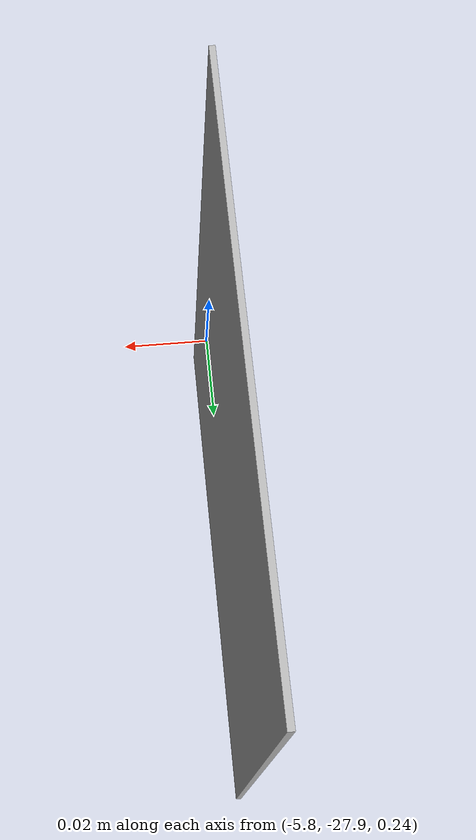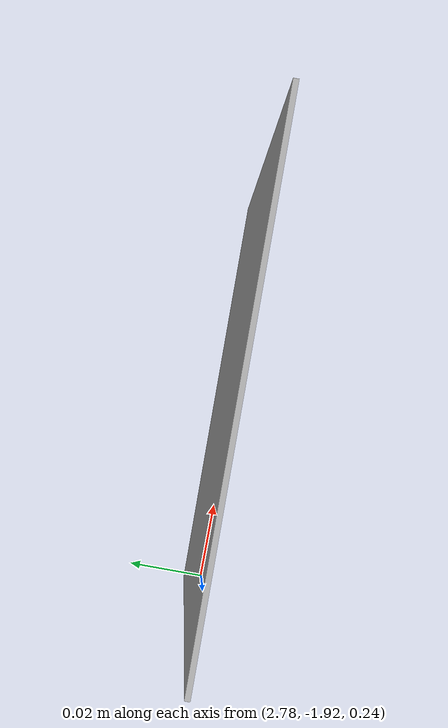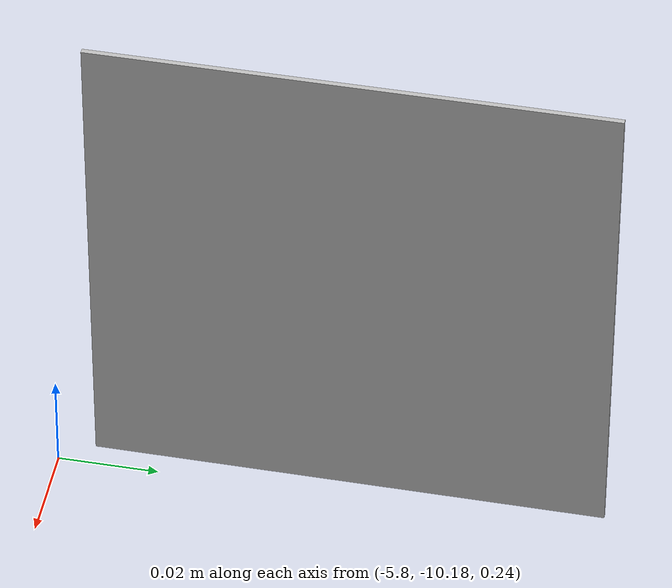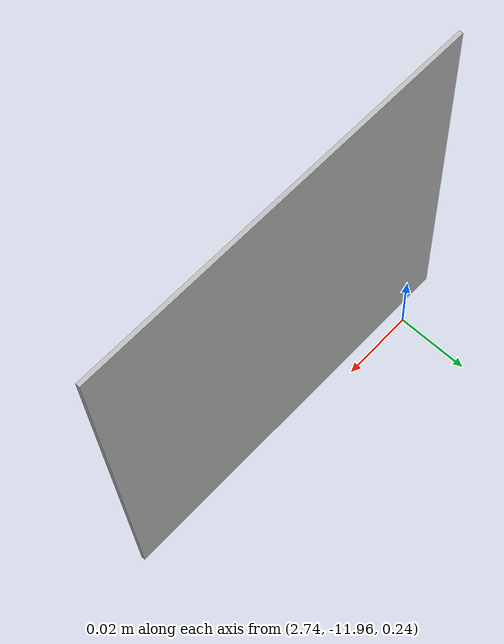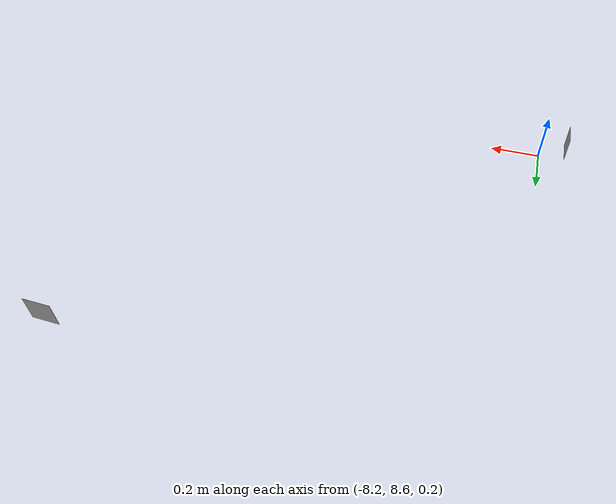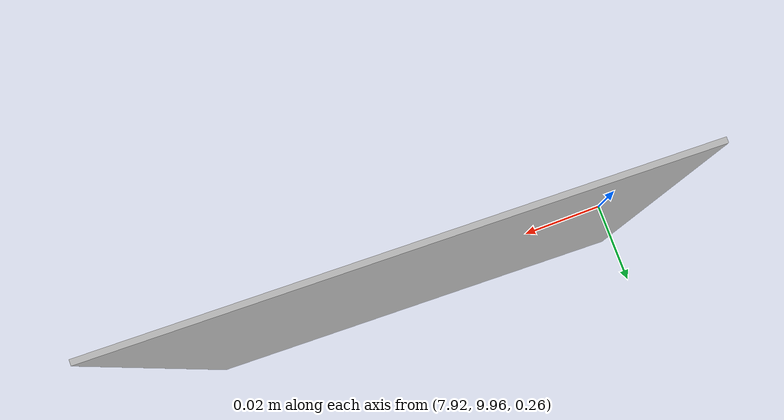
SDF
<sdf version="1.7">
 <world name="default">
  <light name="sun" type="directional">
   <pose>0 0 10 0 -0 0</pose>
   <diffuse>1 1 1 1</diffuse>
   <specular>0.5 0.5 0.5 1</specular>
   <attenuation>
    <range>2000</range>
    <constant>0.7</constant>
    <linear>0.005</linear>
    <quadratic>0.0005</quadratic>
   </attenuation>
   <direction>-0.5 0.1 -0.9</direction>
   <spot><inner_angle>0</inner_angle><outer_angle>0</outer_angle><falloff>0</falloff></spot>
  </light>
  <gravity>0 0 -9.8</gravity>
  <magnetic_field>6e-06 2.3e-05 -4.2e-05</magnetic_field>
  <atmosphere type="adiabatic"/>
  <physics type="ode">
   <max_step_size>0.001</max_step_size>
   <real_time_factor>1</real_time_factor>
   <real_time_update_rate>1000</real_time_update_rate>
  </physics>
  <scene><ambient>1 1 1 1</ambient><background>1 1 1 1</background><shadows>1</shadows></scene>
  <audio><device>default</device></audio>
  <spherical_coordinates>
   <surface_model>EARTH_WGS84</surface_model>
   <latitude_deg>0</latitude_deg>
   <longitude_deg>0</longitude_deg>
   <elevation>0</elevation>
   <heading_deg>0</heading_deg>
  </spherical_coordinates>
  <model name="qr_SalledeStockage1">
   <static>1</static>
   <link name="qr_SalledeStockage1_link">
    <pose>0 0 0.0125 3.14159 1.57079 3.14159</pose>
    <visual name="visual_qr_SalledeStockage1">
     <cast_shadows>0</cast_shadows>
     <geometry><box><size>0.1 0.1 0.001</size></box></geometry>
     <material>
      <script>
       <uri>model://qr_SalledeStockage1/materials/scripts</uri>
       <uri>model://qr_SalledeStockage1/materials/textures</uri>
       <name>qr_SalledeStockage1/qr_SalledeStockage1</name>
      </script>
     </material>
    </visual>
    <collision name="collision_qr_SalledeStockage1">
     <geometry><box><size>0.1 0.1 0.001</size></box></geometry>
    </collision>
   </link>
   <pose>7.973 9.9669 0.3 0 -0 1.54064</pose>
  </model>
  <model name="qr_chambre1">
   <static>1</static>
   <link name="qr_chambre1_link">
    <pose>0 0 0.3 3.14159 1.57079 3.14159</pose>
    <visual name="visual_qr_chambre1">
     <cast_shadows>0</cast_shadows>
     <geometry><box><size>0.1 0.1 0.001</size></box></geometry>
     <material>
      <script>
       <uri>model://qr_chambre1/materials/scripts</uri>
       <uri>model://qr_chambre1/materials/textures</uri>
       <name>qr_chambre1/qr_chambre1</name>
      </script>
     </material>
    </visual>
    <collision name="collision_qr_chambre1"><geometry><box><size>0.1 0.1 0.001</size></box></geometry></collision>
   </link>
   <pose>9.58568 8.60878 -0 0 -0 0</pose>
  </model>
  <model name="qr_chambre2">
   <static>1</static>
   <link name="qr_chambre2_link">
    <pose>0 0 0.3 3.14159 1.57079 3.14159</pose>
    <visual name="visual_qr_chambre2">
     <cast_shadows>0</cast_shadows>
     <geometry><box><size>0.1 0.1 0.001</size></box></geometry>
     <material>
      <script>
       <uri>model://qr_chambre2/materials/scripts</uri>
       <uri>model://qr_chambre2/materials/textures</uri>
       <name>qr_chambre2/qr_chambre2</name>
      </script>
     </material>
    </visual>
    <collision name="collision_qr_chambre2"><geometry><box><size>0.1 0.1 0.001</size></box></geometry></collision>
   </link>
   <pose>9.58624 3.42782 -0 0 -0 0</pose>
  </model>
  <model name="qr_chambre3">
   <static>1</static>
   <link name="qr_chambre3_link">
    <pose>0 0 0.3 3.14159 1.57079 3.14159</pose>
    <visual name="visual_qr_chambre3">
     <cast_shadows>0</cast_shadows>
     <geometry><box><size>0.1 0.1 0.001</size></box></geometry>
     <material>
      <script>
       <uri>model://qr_chambre3/materials/scripts</uri>
       <uri>model://qr_chambre3/materials/textures</uri>
       <name>qr_chambre3/qr_chambre3</name>
      </script>
     </material>
    </visual>
    <collision name="collision_qr_chambre3"><geometry><box><size>0.1 0.1 0.001</size></box></geometry></collision>
   </link>
   <pose>7.0842 -10.1306 -0 0 -0 0</pose>
  </model>
  <model name="qr_chambre4">
   <static>1</static>
   <link name="qr_chambre4_link">
    <pose>0 0 0.3 3.14159 1.57079 3.14159</pose>
    <visual name="visual_qr_chambre4">
     <cast_shadows>0</cast_shadows>
     <geometry><box><size>0.1 0.1 0.001</size></box></geometry>
     <material>
      <script>
       <uri>model://qr_chambre4/materials/scripts</uri>
       <uri>model://qr_chambre4/materials/textures</uri>
       <name>qr_chambre4/qr_chambre4</name>
      </script>
     </material>
    </visual>
    <collision name="collision_qr_chambre4"><geometry><box><size>0.1 0.1 0.001</size></box></geometry></collision>
   </link>
   <pose>7.0861 -24.1264 -0 0 -0 0</pose>
  </model>
  <model name="qr_chambre5">
   <static>1</static>
   <link name="qr_chambre5_link">
    <pose>0 0 0.3 3.14159 1.57079 3.14159</pose>
    <visual name="visual_qr_chambre5">
     <cast_shadows>0</cast_shadows>
     <geometry><box><size>0.1 0.1 0.001</size></box></geometry>
     <material>
      <script>
       <uri>model://qr_chambre5/materials/scripts</uri>
       <uri>model://qr_chambre5/materials/textures</uri>
       <name>qr_chambre5/qr_chambre5</name>
      </script>
     </material>
    </visual>
    <collision name="collision_qr_chambre5"><geometry><box><size>0.1 0.1 0.001</size></box></geometry></collision>
   </link>
   <pose>5.13579 -27.9018 0 0 0 -1.57146</pose>
  </model>
  <model name="qr_chambre5_0">
   <static>1</static>
   <link name="qr_chambre5_link">
    <pose>0 0 0.3 3.14159 1.57079 3.14159</pose>
    <visual name="visual_qr_chambre5">
     <cast_shadows>0</cast_shadows>
     <geometry><box><size>0.1 0.1 0.001</size></box></geometry>
     <material>
      <script>
       <uri>model://qr_chambre5/materials/scripts</uri>
       <uri>model://qr_chambre5/materials/textures</uri>
       <name>qr_chambre5/qr_chambre5</name>
      </script>
     </material>
    </visual>
    <collision name="collision_qr_chambre5"><geometry><box><size>0.1 0.1 0.001</size></box></geometry></collision>
   </link>
   <pose>-1.00847 -34.0332 -0 0 -0 1.56542</pose>
  </model>
  <model name="qr_SalledAttente">
   <static>1</static>
   <link name="qr_SalledAttente_link">
    <pose>0 0 0.3 3.14159 1.57079 3.14159</pose>
    <visual name="visual_qr_SalledAttente">
     <cast_shadows>0</cast_shadows>
     <geometry><box><size>0.1 0.1 0.001</size></box></geometry>
     <material>
      <script>
       <uri>model://qr_SalledAttente/materials/scripts</uri>
       <uri>model://qr_SalledAttente/materials/textures</uri>
       <name>qr_SalledAttente/qr_SalledAttente</name>
      </script>
     </material>
    </visual>
    <collision name="collision_qr_SalledAttente">
     <geometry><box><size>0.1 0.1 0.001</size></box></geometry>
    </collision>
   </link>
   <pose>-5.79635 -27.8407 -0 0 -0 0</pose>
  </model>
  <model name="qr_chambre6">
   <static>1</static>
   <link name="qr_chambre6_link">
    <pose>0 0 0.3 3.14159 1.57079 3.14159</pose>
    <visual name="visual_qr_chambre6">
     <cast_shadows>0</cast_shadows>
     <geometry><box><size>0.1 0.1 0.001</size></box></geometry>
     <material>
      <script>
       <uri>model://qr_chambre6/materials/scripts</uri>
       <uri>model://qr_chambre6/materials/textures</uri>
       <name>qr_chambre6/qr_chambre6</name>
      </script>
     </material>
    </visual>
    <collision name="collision_qr_chambre6"><geometry><box><size>0.1 0.1 0.001</size></box></geometry></collision>
   </link>
   <pose>-5.79396 -24.1246 -0 0 -0 0</pose>
  </model>
  <model name="qr_chambre7">
   <static>1</static>
   <link name="qr_chambre7_link">
    <pose>0 0 0.3 3.14159 1.57079 3.14159</pose>
    <visual name="visual_qr_chambre7">
     <cast_shadows>0</cast_shadows>
     <geometry><box><size>0.1 0.1 0.001</size></box></geometry>
     <material>
      <script>
       <uri>model://qr_chambre7/materials/scripts</uri>
       <uri>model://qr_chambre7/materials/textures</uri>
       <name>qr_chambre7/qr_chambre7</name>
      </script>
     </material>
    </visual>
    <collision name="collision_qr_chambre7"><geometry><box><size>0.1 0.1 0.001</size></box></geometry></collision>
   </link>
   <pose>-5.79523 -10.121 -0 0 -0 0</pose>
  </model>
  <model name="qr_chambre8">
   <static>1</static>
   <link name="qr_chambre8_link">
    <pose>0 0 0.3 3.14159 1.57079 3.14159</pose>
    <visual name="visual_qr_chambre8">
     <cast_shadows>0</cast_shadows>
     <geometry><box><size>0.1 0.1 0.001</size></box></geometry>
     <material>
      <script>
       <uri>model://qr_chambre8/materials/scripts</uri>
       <uri>model://qr_chambre8/materials/textures</uri>
       <name>qr_chambre8/qr_chambre8</name>
      </script>
     </material>
    </visual>
    <collision name="collision_qr_chambre8"><geometry><box><size>0.1 0.1 0.001</size></box></geometry></collision>
   </link>
   <pose>-8.2967 3.44099 -0 0 -0 0</pose>
  </model>
  <model name="qr_chambre9">
   <static>1</static>
   <link name="qr_chambre9_link">
    <pose>0 0 0.3 3.14159 1.57079 3.14159</pose>
    <visual name="visual_qr_chambre9">
     <cast_shadows>0</cast_shadows>
     <geometry><box><size>0.1 0.1 0.001</size></box></geometry>
     <material>
      <script>
       <uri>model://qr_chambre9/materials/scripts</uri>
       <uri>model://qr_chambre9/materials/textures</uri>
       <name>qr_chambre9/qr_chambre9</name>
      </script>
     </material>
    </visual>
    <collision name="collision_qr_chambre9"><geometry><box><size>0.1 0.1 0.001</size></box></geometry></collision>
   </link>
   <pose>-8.29797 8.60516 -0 0 -0 0</pose>
  </model>
  <model name="qr_SalledeStockage2">
   <static>1</static>
   <link name="qr_SalledeStockage2_link">
    <pose>0 0 0.0125 3.14159 1.57079 3.14159</pose>
    <visual name="visual_qr_SalledeStockage2">
     <cast_shadows>0</cast_shadows>
     <geometry><box><size>0.1 0.1 0.001</size></box></geometry>
     <material>
      <script>
       <uri>model://qr_SalledeStockage2/materials/scripts</uri>
       <uri>model://qr_SalledeStockage2/materials/textures</uri>
       <name>qr_SalledeStockage2/qr_SalledeStockage2</name>
      </script>
     </material>
    </visual>
    <collision name="collision_qr_SalledeStockage2">
     <geometry><box><size>0.1 0.1 0.001</size></box></geometry>
    </collision>
   </link>
   <pose>-6.69278 9.96674 0.3 0 -0 1.55497</pose>
  </model>
  <model name="qr_SalleConsultation1">
   <static>1</static>
   <link name="qr_SalleConsultation1_link">
    <pose>0 0 0.3 3.14159 1.57079 3.14159</pose>
    <visual name="visual_qr_SalleConsultation1">
     <cast_shadows>0</cast_shadows>
     <geometry><box><size>0.1 0.1 0.001</size></box></geometry>
     <material>
      <script>
       <uri>model://qr_SalleConsultation1/materials/scripts</uri>
       <uri>model://qr_SalleConsultation1/materials/textures</uri>
       <name>qr_SalleConsultation1/qr_SalleConsultation1</name>
      </script>
     </material>
    </visual>
    <collision name="collision_qr_SalleConsultation1">
     <geometry><box><size>0.1 0.1 0.001</size></box></geometry>
    </collision>
   </link>
   <pose>2.83115 -1.91517 0 0 0 -1.56656</pose>
  </model>
  <model name="qr_SalleConsultation2">
   <static>1</static>
   <link name="qr_SalleConsultation2_link">
    <pose>0 0 0.3 3.14159 1.57079 3.14159</pose>
    <visual name="visual_qr_SalleConsultation2">
     <cast_shadows>0</cast_shadows>
     <geometry><box><size>0.1 0.1 0.001</size></box></geometry>
     <material>
      <script>
       <uri>model://qr_SalleConsultation2/materials/scripts</uri>
       <uri>model://qr_SalleConsultation2/materials/textures</uri>
       <name>qr_SalleConsultation2/qr_SalleConsultation2</name>
      </script>
     </material>
    </visual>
    <collision name="collision_qr_SalleConsultation2">
     <geometry><box><size>0.1 0.1 0.001</size></box></geometry>
    </collision>
   </link>
   <pose>-1.54088 -1.90841 0 0 0 -1.58031</pose>
  </model>
  <model name="qr_Toilette1">
   <static>1</static>
   <link name="qr_Toilette1_link">
    <pose>0 0 0.3 3.14159 1.57079 3.14159</pose>
    <visual name="visual_qr_Toilette1">
     <cast_shadows>0</cast_shadows>
     <geometry><box><size>0.1 0.1 0.001</size></box></geometry>
     <material>
      <script>
       <uri>model://qr_Toilette1/materials/scripts</uri>
       <uri>model://qr_Toilette1/materials/textures</uri>
       <name>qr_Toilette1/qr_Toilette1</name>
      </script>
     </material>
    </visual>
    <collision name="collision_qr_Toilette1">
     <geometry><box><size>0.1 0.1 0.001</size></box></geometry>
    </collision>
   </link>
   <pose>2.7813 -11.9612 0 0 0 -1.57826</pose>
  </model>
  <model name="qr_Toilette2">
   <static>1</static>
   <link name="qr_Toilette2_link">
    <pose>0 0 0.3 3.14159 1.57079 3.14159</pose>
    <visual name="visual_qr_Toilette2">
     <cast_shadows>0</cast_shadows>
     <geometry><box><size>0.1 0.1 0.001</size></box></geometry>
     <material>
      <script>
       <uri>model://qr_Toilette2/materials/scripts</uri>
       <uri>model://qr_Toilette2/materials/textures</uri>
       <name>qr_Toilette2/qr_Toilette2</name>
      </script>
     </material>
    </visual>
    <collision name="collision_qr_Toilette2">
     <geometry><box><size>0.1 0.1 0.001</size></box></geometry>
    </collision>
   </link>
   <pose>-1.55473 -11.9621 0 0 0 -1.56522</pose>
  </model>
  <model name="qr_SalledeRadiologie">
   <static>1</static>
   <link name="qr_SalledeRadiologie_link">
    <pose>0 0 0.3 3.14159 1.57079 3.14159</pose>
    <visual name="visual_qr_SalledeRadiologie">
     <cast_shadows>0</cast_shadows>
     <geometry><box><size>0.1 0.1 0.001</size></box></geometry>
     <material>
      <script>
       <uri>model://qr_SalledeRadiologie/materials/scripts</uri>
       <uri>model://qr_SalledeRadiologie/materials/textures</uri>
       <name>qr_SalledeRadiologie/qr_SalledeRadiologie</name>
      </script>
     </material>
    </visual>
    <collision name="collision_qr_SalledeRadiologie">
     <geometry><box><size>0.1 0.1 0.001</size></box></geometry>
    </collision>
   </link>
   <pose>2.77812 -17.9105 -0 0 0 -1.60389</pose>
  </model>
  <model name="qr_ChambreSoins">
   <static>1</static>
   <link name="qr_ChambreSoins_link">
    <pose>0 0 0.0125 3.14159 1.57079 3.14159</pose>
    <visual name="visual_qr_ChambreSoins">
     <cast_shadows>0</cast_shadows>
     <geometry><box><size>0.1 0.1 0.001</size></box></geometry>
     <material>
      <script>
       <uri>model://qr_ChambreSoins/materials/scripts</uri>
       <uri>model://qr_ChambreSoins/materials/textures</uri>
       <name>qr_ChambreSoins/qr_ChambreSoins</name>
      </script>
     </material>
    </visual>
    <collision name="collision_qr_ChambreSoins">
     <geometry><box><size>0.1 0.1 0.001</size></box></geometry>
    </collision>
   </link>
   <pose>-1.52444 -17.9138 0.3 0 0 -1.56353</pose>
  </model>
  <model name="qr_SalledAttente_0">
   <static>1</static>
   <link name="qr_SalledAttente_link">
    <pose>0 0 0.3 3.14159 1.57079 3.14159</pose>
    <visual name="visual_qr_SalledAttente">
     <cast_shadows>0</cast_shadows>
     <geometry><box><size>0.1 0.1 0.001</size></box></geometry>
     <material>
      <script>
       <uri>model://qr_SalledAttente/materials/scripts</uri>
       <uri>model://qr_SalledAttente/materials/textures</uri>
       <name>qr_SalledAttente/qr_SalledAttente</name>
      </script>
     </material>
    </visual>
    <collision name="collision_qr_SalledAttente">
     <geometry><box><size>0.1 0.1 0.001</size></box></geometry>
    </collision>
   </link>
   <pose>-7.68115 -34.0349 0 0 0 -1.57596</pose>
  </model>
 </world>
</sdf>
